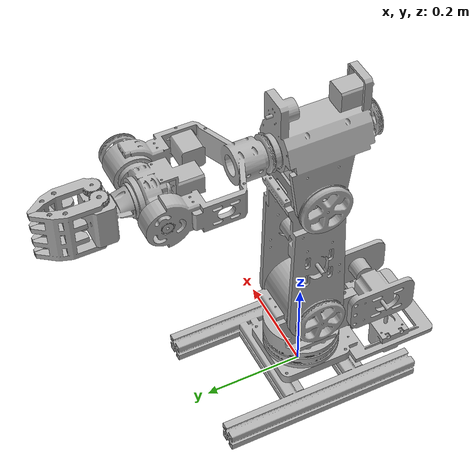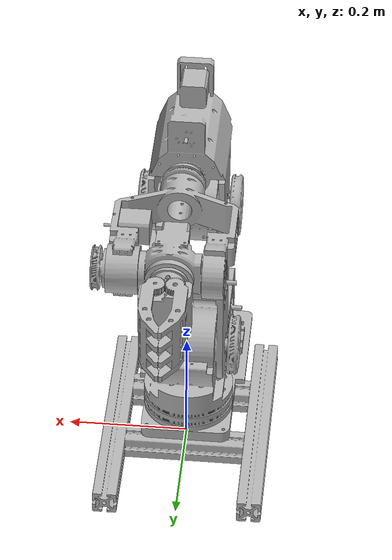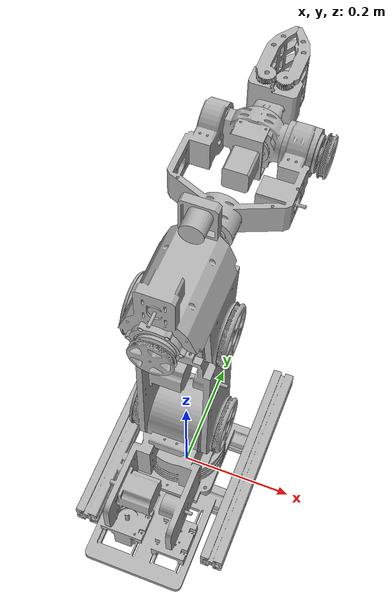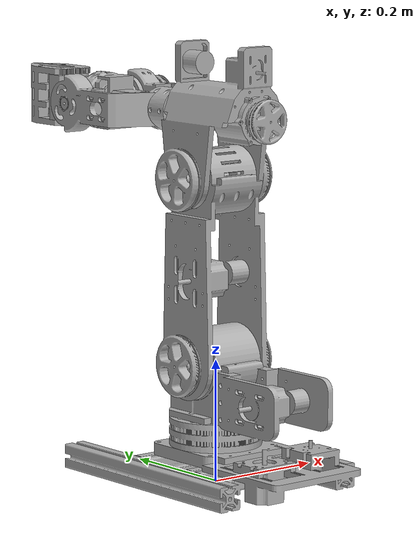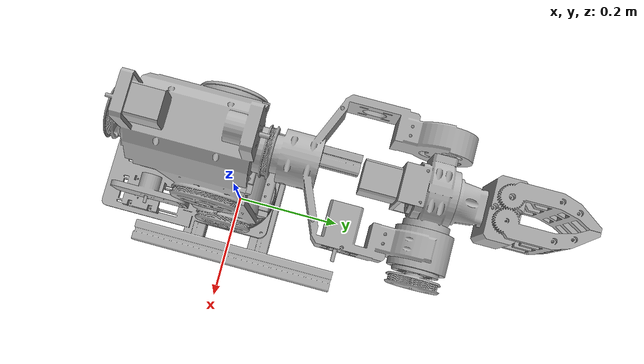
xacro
<?xml version="1.0" ?>
<robot name="robot_arm" xmlns:xacro="http://www.ros.org/wiki/xacro">

<xacro:include filename="$(find robot_arm_description)/urdf/materials.xacro" />
<xacro:include filename="$(find robot_arm_description)/urdf/urdf_assembly.trans" />
<xacro:include filename="$(find robot_arm_description)/urdf/urdf_assembly.gazebo" />
<link name="base_link">
  <inertial>
    <origin xyz="0 0 0" rpy="0 0 0"/>
    <mass value="2.200366644976027"/>
    <inertia ixx="0.02691" iyy="0.015633" izz="0.040737" ixy="-0.000363" iyz="0.001133" ixz="-0.000114"/>
  </inertial>
  <visual>
    <origin xyz="0 0 0" rpy="0 0 0"/>
    <geometry>
      <mesh filename="package://robot_arm_description/meshes/base_link.stl" scale="0.001 0.001 0.001"/>
    </geometry>
    <material name="silver"/>
  </visual>
  <collision>
    <origin xyz="0 0 0" rpy="0 0 0"/>
    <geometry>
      <mesh filename="package://robot_arm_description/meshes/base_link.stl" scale="0.001 0.001 0.001"/>
    </geometry>
  </collision>
</link>

<link name="link_1_1">
  <inertial>
    <origin xyz="0 0 0.024001498636141927" rpy="0 0 0"/>
    <mass value="2.030739431813925"/>
    <inertia ixx="0.014477" iyy="0.006803" izz="0.0131" ixy="-0.000145" iyz="0.000726" ixz="1.6e-05"/>
  </inertial>
  <visual>
    <origin xyz="0 0 -0.117341" rpy="0 0 0"/>
    <geometry>
      <mesh filename="package://robot_arm_description/meshes/link_1_1.stl" scale="0.001 0.001 0.001"/>
    </geometry>
    <material name="silver"/>
  </visual>
  <collision>
    <origin xyz="0 0 -0.117341" rpy="0 0 0"/>
    <geometry>
      <mesh filename="package://robot_arm_description/meshes/link_1_1.stl" scale="0.001 0.001 0.001"/>
    </geometry>
  </collision>
</link>

<link name="link_2_1">
  <inertial>
    <origin xyz="0 0 0.13687546860146899" rpy="0 0 0"/>
    <mass value="1.6626610036452254"/>
    <inertia ixx="0.024251" iyy="0.026584" izz="0.005086" ixy="0.0" iyz="7e-06" ixz="-2.6e-05"/>
  </inertial>
  <visual>
    <origin xyz="0 0.002 -0.199341" rpy="0 0 0"/>
    <geometry>
      <mesh filename="package://robot_arm_description/meshes/link_2_1.stl" scale="0.001 0.001 0.001"/>
    </geometry>
    <material name="silver"/>
  </visual>
  <collision>
    <origin xyz="0 0 -0.199341" rpy="0 0 0"/>
    <geometry>
      <mesh filename="package://robot_arm_description/meshes/link_2_1.stl" scale="0.001 0.001 0.001"/>
    </geometry>
  </collision>
</link>

<link name="link_3_1">
  <inertial>
    <origin xyz="0 -0.016283006892585307 0.07497937866412202" rpy="0 0 0"/>
    <mass value="9.121346283290384"/>
    <inertia ixx="0.063998" iyy="0.062586" izz="0.038355" ixy="2.5e-05" iyz="0.007821" ixz="-0.000107"/>
  </inertial>
  <visual>
    <origin xyz="0 0.002793 -0.498507" rpy="0 0 0"/>
    <geometry>
      <mesh filename="package://robot_arm_description/meshes/link_3_1.stl" scale="0.001 0.001 0.001"/>
    </geometry>
    <material name="silver"/>
  </visual>
  <collision>
    <origin xyz="0 0.002793 -0.498507" rpy="0 0 0"/>
    <geometry>
      <mesh filename="package://robot_arm_description/meshes/link_3_1.stl" scale="0.001 0.001 0.001"/>
    </geometry>
  </collision>
</link>

<link name="link_4_1">
  <inertial>
    <origin xyz="0.005513953778460314 0.2625680653929481 4.057984306360396e-06" rpy="0 0 0"/>
    <mass value="7.5787166188185005"/>
    <inertia ixx="0.126085" iyy="0.027107" izz="0.147683" ixy="-0.000913" iyz="-1e-06" ixz="-2e-06"/>
  </inertial>
  <visual>
    <origin xyz="0.002859 0.112793 -0.596394" rpy="0 0 0"/>
    <geometry>
      <mesh filename="package://robot_arm_description/meshes/link_4_1.stl" scale="0.001 0.001 0.001"/>
    </geometry>
    <material name="silver"/>
  </visual>
  <collision>
    <origin xyz="0.002859 0.112793 -0.596394" rpy="0 0 0"/>
    <geometry>
      <mesh filename="package://robot_arm_description/meshes/link_4_1.stl" scale="0.001 0.001 0.001"/>
    </geometry>
  </collision>
</link>

<link name="link_5_1">
  <inertial>
    <origin xyz="-0.07848672877351807 -0.01878037329851351 1.0025048180262175e-05" rpy="0 0 0"/>
    <mass value="3.0872435381050845"/>
    <inertia ixx="0.004619" iyy="0.008205" izz="0.009933" ixy="-0.001102" iyz="2e-06" ixz="0.0"/>
  </inertial>
  <visual>
    <origin xyz="-0.094641 -0.289485 -0.596394" rpy="0 0 0"/>
    <geometry>
      <mesh filename="package://robot_arm_description/meshes/link_5_1.stl" scale="0.001 0.001 0.001"/>
    </geometry>
    <material name="silver"/>
  </visual>
  <collision>
    <origin xyz="-0.094641 -0.289485 -0.596394" rpy="0 0 0"/>
    <geometry>
      <mesh filename="package://robot_arm_description/meshes/link_5_1.stl" scale="0.001 0.001 0.001"/>
    </geometry>
  </collision>
</link>

<link name="link_6_1">
  <inertial>
    <origin xyz="-0.0006916944165798809 0.03632808398557291 -0.0013926003723436775" rpy="0 0 0"/>
    <mass value="2.637875841155386"/>
    <inertia ixx="0.004764" iyy="0.001978" izz="0.004912" ixy="4.3e-05" iyz="8.7e-05" ixz="6.9e-05"/>
  </inertial>
  <visual>
    <origin xyz="0.002859 -0.314485 -0.596394" rpy="0 0 0"/>
    <geometry>
      <mesh filename="package://robot_arm_description/meshes/link_6_1.stl" scale="0.001 0.001 0.001"/>
    </geometry>
    <material name="silver"/>
  </visual>
  <collision>
    <origin xyz="0.002859 -0.314485 -0.596394" rpy="0 0 0"/>
    <geometry>
      <mesh filename="package://robot_arm_description/meshes/link_6_1.stl" scale="0.001 0.001 0.001"/>
    </geometry>
  </collision>
</link>

<link name="link_7_1">
  <inertial>
    <origin xyz="0.005289159325895416 0.05604353410292273 -0.03427022222823228" rpy="0 0 0"/>
    <mass value="0.8308399781572773"/>
    <inertia ixx="0.001677" iyy="0.000955" izz="0.000833" ixy="5e-05" iyz="3e-06" ixz="1e-06"/>
  </inertial>
  <visual>
    <origin xyz="-0.01211 -0.374485 -0.630669" rpy="0 0 0"/>
    <geometry>
      <mesh filename="package://robot_arm_description/meshes/link_7_1.stl" scale="0.001 0.001 0.001"/>
    </geometry>
    <material name="silver"/>
  </visual>
  <collision>
    <origin xyz="-0.01211 -0.374485 -0.630669" rpy="0 0 0"/>
    <geometry>
      <mesh filename="package://robot_arm_description/meshes/link_7_1.stl" scale="0.001 0.001 0.001"/>
    </geometry>
  </collision>
</link>

<link name="link_8_1">
  <inertial>
    <origin xyz="-0.0054920854200500475 0.05617084434859132 -0.03817503247390952" rpy="0 0 0"/>
    <mass value="0.8293395046016687"/>
    <inertia ixx="0.001672" iyy="0.000956" izz="0.000827" ixy="-4.8e-05" iyz="-0.0" ixz="-1e-06"/>
  </inertial>
  <visual>
    <origin xyz="0.01809 -0.374485 -0.634569" rpy="0 0 0"/>
    <geometry>
      <mesh filename="package://robot_arm_description/meshes/link_8_1.stl" scale="0.001 0.001 0.001"/>
    </geometry>
    <material name="silver"/>
  </visual>
  <collision>
    <origin xyz="0.01809 -0.374485 -0.634569" rpy="0 0 0"/>
    <geometry>
      <mesh filename="package://robot_arm_description/meshes/link_8_1.stl" scale="0.001 0.001 0.001"/>
    </geometry>
  </collision>
</link>

<joint name="joint_1" type="continuous">
  <origin xyz="0 0 0.117341" rpy="0 0 0"/>
  <parent link="base_link"/>
  <child link="link_1_1"/>
  <axis xyz="-0.0 -0.0 1.0"/>
</joint>

<joint name="joint_2" type="revolute">
  <origin xyz="0 0.0 0.082" rpy="0 0 0"/>
  <parent link="link_1_1"/>
  <child link="link_2_1"/>
  <axis xyz="-1.0 -0.0 -0.0"/>
  <limit upper="1.570796" lower="-0.872665" effort="100" velocity="100"/>
</joint>

<joint name="joint_3" type="revolute">
  <origin xyz="0.0 0 0.299166" rpy="0 0 0"/>
  <parent link="link_2_1"/>
  <child link="link_3_1"/>
  <axis xyz="1.0 0.0 0.0"/>
  <limit upper="1.570796" lower="-1.570796" effort="100" velocity="100"/>
</joint>

<joint name="joint_4" type="continuous">
  <origin xyz="0 -0.11 0.097887" rpy="0 0 0"/>
  <parent link="link_3_1"/>
  <child link="link_4_1"/>
  <axis xyz="-0.0 1.0 -0.0"/>
</joint>

<joint name="joint_5" type="revolute">
  <origin xyz="0.0975 0.402278 0.0" rpy="0 0 0"/>
  <parent link="link_4_1"/>
  <child link="link_5_1"/>
  <axis xyz="1.0 0.0 0.0"/>
  <limit upper="2.443461" lower="-2.443461" effort="100" velocity="100"/>
</joint>

<joint name="joint_6" type="continuous">
  <origin xyz="-0.0975 0.025 0.0" rpy="0 0 0"/>
  <parent link="link_5_1"/>
  <child link="link_6_1"/>
  <axis xyz="-0.0 1.0 0.0"/>
</joint>

<joint name="joint_7" type="revolute">
  <origin xyz="0.014969 0.06 0.034275" rpy="0 0 0"/>
  <parent link="link_6_1"/>
  <child link="link_7_1"/>
  <axis xyz="-0.0 -0.0 1.0"/>
  <limit upper="0.0" lower="-1.570796" effort="100" velocity="100"/>
</joint>

<joint name="joint_8" type="revolute">
  <origin xyz="-0.015231 0.06 0.038175" rpy="0 0 0"/>
  <parent link="link_6_1"/>
  <child link="link_8_1"/>
  <axis xyz="-0.0 -0.0 1.0"/>
  <limit upper="1.570796" lower="0.0" effort="100" velocity="100"/>
</joint>

</robot>

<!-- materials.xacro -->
<robot name="urdf_assembly" xmlns:xacro="http://www.ros.org/wiki/xacro" >

<material name="silver">
  <color rgba="0.700 0.700 0.700 1.000"/>
</material>

</robot>

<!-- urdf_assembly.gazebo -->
<robot name="robot_arm" xmlns:xacro="http://www.ros.org/wiki/xacro" >

<xacro:property name="body_color" value="Gazebo/Silver" />

<gazebo>
  <plugin name="control" filename="libgazebo_ros_control.so"/>
</gazebo>
<gazebo reference="base_link">
  <material>${body_color}</material>
  <mu1>0.2</mu1>
  <mu2>0.2</mu2>
  <selfCollide>true</selfCollide>
  <gravity>true</gravity>
</gazebo>

<gazebo reference="link_1_1">
  <material>${body_color}</material>
  <mu1>0.2</mu1>
  <mu2>0.2</mu2>
  <selfCollide>true</selfCollide>
</gazebo>

<gazebo reference="link_2_1">
  <material>${body_color}</material>
  <mu1>0.2</mu1>
  <mu2>0.2</mu2>
  <selfCollide>true</selfCollide>
</gazebo>

<gazebo reference="link_3_1">
  <material>${body_color}</material>
  <mu1>0.2</mu1>
  <mu2>0.2</mu2>
  <selfCollide>true</selfCollide>
</gazebo>

<gazebo reference="link_4_1">
  <material>${body_color}</material>
  <mu1>0.2</mu1>
  <mu2>0.2</mu2>
  <selfCollide>true</selfCollide>
</gazebo>

<gazebo reference="link_5_1">
  <material>${body_color}</material>
  <mu1>0.2</mu1>
  <mu2>0.2</mu2>
  <selfCollide>true</selfCollide>
</gazebo>

<gazebo reference="link_6_1">
  <material>${body_color}</material>
  <mu1>0.2</mu1>
  <mu2>0.2</mu2>
  <selfCollide>true</selfCollide>
</gazebo>

<gazebo reference="link_7_1">
  <material>${body_color}</material>
  <mu1>0.2</mu1>
  <mu2>0.2</mu2>
  <selfCollide>true</selfCollide>
</gazebo>

<gazebo reference="link_8_1">
  <material>${body_color}</material>
  <mu1>0.2</mu1>
  <mu2>0.2</mu2>
  <selfCollide>true</selfCollide>
</gazebo>

</robot>
